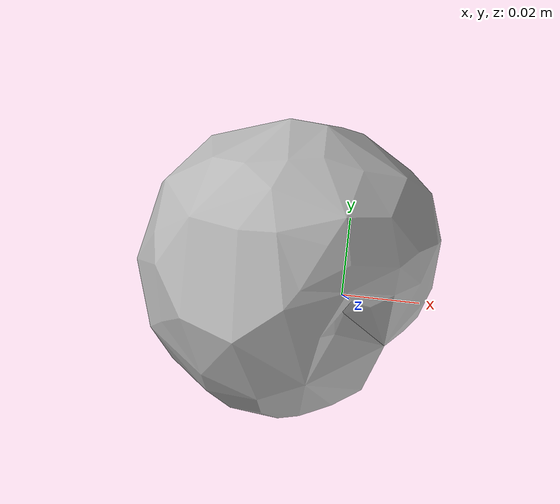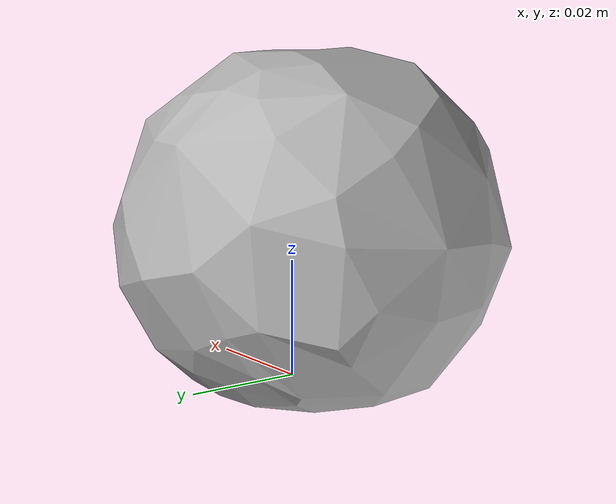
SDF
<?xml version='1.0'?>
<sdf version="1.4">
  <model name="015_peach">
    <static>false</static>
    <link name="link">
      <inertial>
        <pose>-0.014844748603600735 0.006638215752836384 0.028337962562371893 -1.500109475975412 -0.9197383896306114 -0.6822458305011168</pose>
        <mass>0.01188054841067016</mass>
        <inertia>
          <ixx>4.626286643574371e-06</ixx>
          <ixy>6.164772428426939e-22</ixy>
          <ixz>-2.6132455832666715e-22</ixz>
          <iyy>4.517762258313259e-06</iyy>
          <iyz>-2.999264712682691e-22</iyz>
          <izz>4.202672743315659e-06</izz>
        </inertia>
      </inertial>
      <collision name="collision">
        <geometry>
          <mesh>
            <!-- Use a downsampled mesh for collisions -->
            <uri>model:///015_peach/015_peach_250_collision.stl</uri>
	        </mesh>
        </geometry>
        <surface>
      </surface>
      </collision>
      <visual name="visual">
        <geometry>
          <mesh>
            <uri>model:///015_peach/textured.obj</uri>
	        </mesh>
        </geometry>
        <material>
          <script>
            <uri>model:///015_peach/015_peach.material</uri>
            <name>015_peach</name>
          </script>
        </material>
      </visual>
    </link>
  </model>
</sdf>
